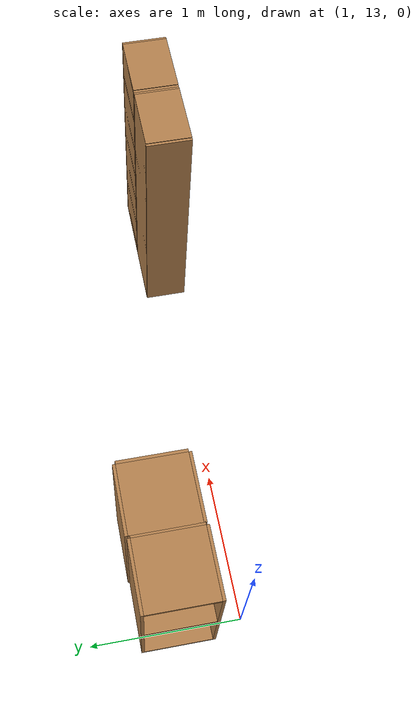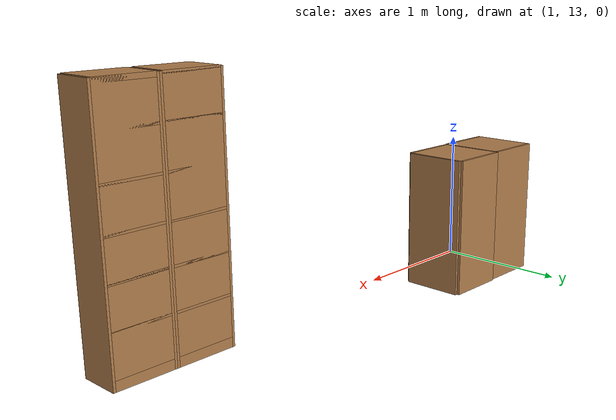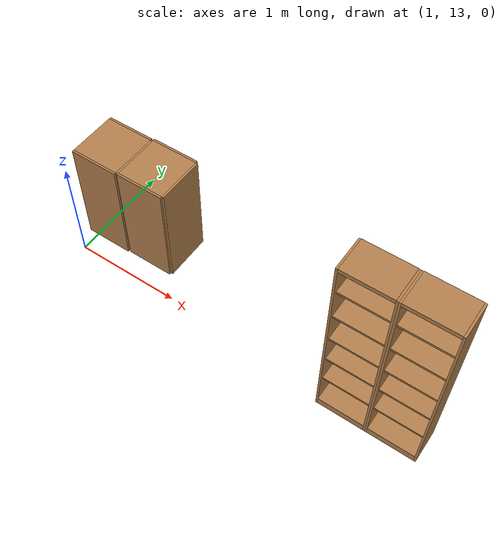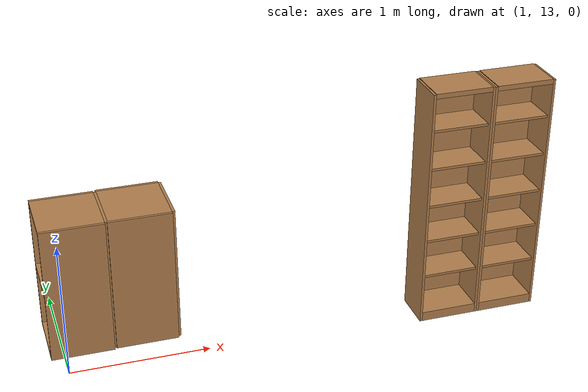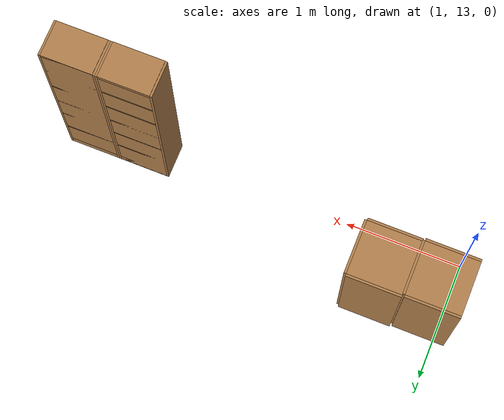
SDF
<sdf version="1.6">
 <world name="default">
  <model name="high_shelf02">
   <link name="link">
    <inertial>
     <mass>5</mass>
     <inertia><ixx>1</ixx><ixy>0</ixy><ixz>0</ixz><iyy>1</iyy><iyz>0</iyz><izz>1</izz></inertia>
    </inertial>
    <visual name="left_board">
     <pose>-0.1475 0.009 0.898 0 -0 0</pose>
     <geometry><box><size>0.295 0.018 1.796</size></box></geometry>
     <material>
      <script>
       <uri>model://base_materials/wood/scripts</uri>
       <uri>model://base_materials/wood/textures</uri>
       <name>base_materials/light_wood</name>
      </script>
     </material>
    </visual>
    <collision name="collision_left_board">
     <pose>-0.1475 0.009 0.898 0 -0 0</pose>
     <geometry><box><size>0.295 0.018 1.796</size></box></geometry>
    </collision>
    <visual name="right_board">
     <pose>-0.1475 0.441 0.898 0 -0 0</pose>
     <geometry><box><size>0.295 0.018 1.796</size></box></geometry>
     <material>
      <script>
       <uri>model://base_materials/wood/scripts</uri>
       <uri>model://base_materials/wood/textures</uri>
       <name>base_materials/light_wood</name>
      </script>
     </material>
    </visual>
    <collision name="collision_right_board">
     <pose>-0.1475 0.441 0.898 0 -0 0</pose>
     <geometry><box><size>0.295 0.018 1.796</size></box></geometry>
    </collision>
    <visual name="top_board">
     <pose>-0.1475 0.225 1.7825 0 -0 0</pose>
     <geometry><box><size>0.295 0.414 0.035</size></box></geometry>
     <material>
      <script>
       <uri>model://base_materials/wood/scripts</uri>
       <uri>model://base_materials/wood/textures</uri>
       <name>base_materials/light_wood</name>
      </script>
     </material>
    </visual>
    <collision name="collision_top_board">
     <pose>-0.1475 0.225 1.7825 0 -0 0</pose>
     <geometry><box><size>0.295 0.414 0.035</size></box></geometry>
    </collision>
    <visual name="1st_shelf">
     <pose>-0.162 0.225 1.51 0 -0 0</pose>
     <geometry><box><size>0.266 0.414 0.018</size></box></geometry>
     <material>
      <script>
       <uri>model://base_materials/wood/scripts</uri>
       <uri>model://base_materials/wood/textures</uri>
       <name>base_materials/light_wood</name>
      </script>
     </material>
    </visual>
    <collision name="collision_1st_shelf">
     <pose>-0.162 0.225 1.51 0 -0 0</pose>
     <geometry><box><size>0.266 0.414 0.018</size></box></geometry>
    </collision>
    <visual name="2nd_shelf">
     <pose>-0.162 0.225 1.22 0 -0 0</pose>
     <geometry><box><size>0.266 0.414 0.018</size></box></geometry>
     <material>
      <script>
       <uri>model://base_materials/wood/scripts</uri>
       <uri>model://base_materials/wood/textures</uri>
       <name>base_materials/light_wood</name>
      </script>
     </material>
    </visual>
    <collision name="collision_2nd_shelf">
     <pose>-0.162 0.225 1.22 0 -0 0</pose>
     <geometry><box><size>0.266 0.414 0.018</size></box></geometry>
    </collision>
    <visual name="3rd_shelf">
     <pose>-0.162 0.225 0.93 0 -0 0</pose>
     <geometry><box><size>0.266 0.414 0.018</size></box></geometry>
     <material>
      <script>
       <uri>model://base_materials/wood/scripts</uri>
       <uri>model://base_materials/wood/textures</uri>
       <name>base_materials/light_wood</name>
      </script>
     </material>
    </visual>
    <collision name="collision_3rd_shelf">
     <pose>-0.162 0.225 0.93 0 -0 0</pose>
     <geometry><box><size>0.266 0.414 0.018</size></box></geometry>
    </collision>
    <visual name="4th_shelf">
     <pose>-0.162 0.225 0.65 0 -0 0</pose>
     <geometry><box><size>0.266 0.414 0.018</size></box></geometry>
     <material>
      <script>
       <uri>model://base_materials/wood/scripts</uri>
       <uri>model://base_materials/wood/textures</uri>
       <name>base_materials/light_wood</name>
      </script>
     </material>
    </visual>
    <collision name="collision_4th_shelf">
     <pose>-0.162 0.225 0.65 0 -0 0</pose>
     <geometry><box><size>0.266 0.414 0.018</size></box></geometry>
    </collision>
    <visual name="5th_shelf">
     <pose>-0.162 0.225 0.36 0 -0 0</pose>
     <geometry><box><size>0.266 0.414 0.018</size></box></geometry>
     <material>
      <script>
       <uri>model://base_materials/wood/scripts</uri>
       <uri>model://base_materials/wood/textures</uri>
       <name>base_materials/light_wood</name>
      </script>
     </material>
    </visual>
    <collision name="collision_5th_shelf">
     <pose>-0.162 0.225 0.36 0 -0 0</pose>
     <geometry><box><size>0.266 0.414 0.018</size></box></geometry>
    </collision>
    <visual name="bottom_board">
     <pose>-0.1475 0.225 0.035 0 -0 0</pose>
     <geometry><box><size>0.295 0.414 0.07</size></box></geometry>
     <material>
      <script>
       <uri>model://base_materials/wood/scripts</uri>
       <uri>model://base_materials/wood/textures</uri>
       <name>base_materials/light_wood</name>
      </script>
     </material>
    </visual>
    <collision name="collision_bottom_board">
     <pose>-0.1475 0.225 0.035 0 -0 0</pose>
     <geometry><box><size>0.295 0.414 0.07</size></box></geometry>
    </collision>
    <visual name="back_board">
     <pose>-0.286 0.225 0.898 0 -0 0</pose>
     <geometry><box><size>0.018 0.414 1.796</size></box></geometry>
     <material>
      <script>
       <uri>model://base_materials/wood/scripts</uri>
       <uri>model://base_materials/wood/textures</uri>
       <name>base_materials/light_wood</name>
      </script>
     </material>
    </visual>
    <collision name="collision_back_board">
     <pose>-0.286 0.225 0.898 0 -0 0</pose>
     <geometry><box><size>0.018 0.414 1.796</size></box></geometry>
    </collision>
    <velocity_decay><linear>0</linear><angular>0</angular></velocity_decay>
   </link>
   <static>1</static>
   <pose>4 12.87 0 0 0 -1.5708</pose>
  </model>
  <model name="high_shelf03">
   <link name="link">
    <inertial>
     <mass>5</mass>
     <inertia><ixx>1</ixx><ixy>0</ixy><ixz>0</ixz><iyy>1</iyy><iyz>0</iyz><izz>1</izz></inertia>
    </inertial>
    <visual name="left_board">
     <pose>-0.1475 0.009 0.898 0 -0 0</pose>
     <geometry><box><size>0.295 0.018 1.796</size></box></geometry>
     <material>
      <script>
       <uri>model://base_materials/wood/scripts</uri>
       <uri>model://base_materials/wood/textures</uri>
       <name>base_materials/light_wood</name>
      </script>
     </material>
    </visual>
    <collision name="collision_left_board">
     <pose>-0.1475 0.009 0.898 0 -0 0</pose>
     <geometry><box><size>0.295 0.018 1.796</size></box></geometry>
    </collision>
    <visual name="right_board">
     <pose>-0.1475 0.441 0.898 0 -0 0</pose>
     <geometry><box><size>0.295 0.018 1.796</size></box></geometry>
     <material>
      <script>
       <uri>model://base_materials/wood/scripts</uri>
       <uri>model://base_materials/wood/textures</uri>
       <name>base_materials/light_wood</name>
      </script>
     </material>
    </visual>
    <collision name="collision_right_board">
     <pose>-0.1475 0.441 0.898 0 -0 0</pose>
     <geometry><box><size>0.295 0.018 1.796</size></box></geometry>
    </collision>
    <visual name="top_board">
     <pose>-0.1475 0.225 1.7825 0 -0 0</pose>
     <geometry><box><size>0.295 0.414 0.035</size></box></geometry>
     <material>
      <script>
       <uri>model://base_materials/wood/scripts</uri>
       <uri>model://base_materials/wood/textures</uri>
       <name>base_materials/light_wood</name>
      </script>
     </material>
    </visual>
    <collision name="collision_top_board">
     <pose>-0.1475 0.225 1.7825 0 -0 0</pose>
     <geometry><box><size>0.295 0.414 0.035</size></box></geometry>
    </collision>
    <visual name="1st_shelf">
     <pose>-0.162 0.225 1.51 0 -0 0</pose>
     <geometry><box><size>0.266 0.414 0.018</size></box></geometry>
     <material>
      <script>
       <uri>model://base_materials/wood/scripts</uri>
       <uri>model://base_materials/wood/textures</uri>
       <name>base_materials/light_wood</name>
      </script>
     </material>
    </visual>
    <collision name="collision_1st_shelf">
     <pose>-0.162 0.225 1.51 0 -0 0</pose>
     <geometry><box><size>0.266 0.414 0.018</size></box></geometry>
    </collision>
    <visual name="2nd_shelf">
     <pose>-0.162 0.225 1.22 0 -0 0</pose>
     <geometry><box><size>0.266 0.414 0.018</size></box></geometry>
     <material>
      <script>
       <uri>model://base_materials/wood/scripts</uri>
       <uri>model://base_materials/wood/textures</uri>
       <name>base_materials/light_wood</name>
      </script>
     </material>
    </visual>
    <collision name="collision_2nd_shelf">
     <pose>-0.162 0.225 1.22 0 -0 0</pose>
     <geometry><box><size>0.266 0.414 0.018</size></box></geometry>
    </collision>
    <visual name="3rd_shelf">
     <pose>-0.162 0.225 0.93 0 -0 0</pose>
     <geometry><box><size>0.266 0.414 0.018</size></box></geometry>
     <material>
      <script>
       <uri>model://base_materials/wood/scripts</uri>
       <uri>model://base_materials/wood/textures</uri>
       <name>base_materials/light_wood</name>
      </script>
     </material>
    </visual>
    <collision name="collision_3rd_shelf">
     <pose>-0.162 0.225 0.93 0 -0 0</pose>
     <geometry><box><size>0.266 0.414 0.018</size></box></geometry>
    </collision>
    <visual name="4th_shelf">
     <pose>-0.162 0.225 0.65 0 -0 0</pose>
     <geometry><box><size>0.266 0.414 0.018</size></box></geometry>
     <material>
      <script>
       <uri>model://base_materials/wood/scripts</uri>
       <uri>model://base_materials/wood/textures</uri>
       <name>base_materials/light_wood</name>
      </script>
     </material>
    </visual>
    <collision name="collision_4th_shelf">
     <pose>-0.162 0.225 0.65 0 -0 0</pose>
     <geometry><box><size>0.266 0.414 0.018</size></box></geometry>
    </collision>
    <visual name="5th_shelf">
     <pose>-0.162 0.225 0.36 0 -0 0</pose>
     <geometry><box><size>0.266 0.414 0.018</size></box></geometry>
     <material>
      <script>
       <uri>model://base_materials/wood/scripts</uri>
       <uri>model://base_materials/wood/textures</uri>
       <name>base_materials/light_wood</name>
      </script>
     </material>
    </visual>
    <collision name="collision_5th_shelf">
     <pose>-0.162 0.225 0.36 0 -0 0</pose>
     <geometry><box><size>0.266 0.414 0.018</size></box></geometry>
    </collision>
    <visual name="bottom_board">
     <pose>-0.1475 0.225 0.035 0 -0 0</pose>
     <geometry><box><size>0.295 0.414 0.07</size></box></geometry>
     <material>
      <script>
       <uri>model://base_materials/wood/scripts</uri>
       <uri>model://base_materials/wood/textures</uri>
       <name>base_materials/light_wood</name>
      </script>
     </material>
    </visual>
    <collision name="collision_bottom_board">
     <pose>-0.1475 0.225 0.035 0 -0 0</pose>
     <geometry><box><size>0.295 0.414 0.07</size></box></geometry>
    </collision>
    <visual name="back_board">
     <pose>-0.286 0.225 0.898 0 -0 0</pose>
     <geometry><box><size>0.018 0.414 1.796</size></box></geometry>
     <material>
      <script>
       <uri>model://base_materials/wood/scripts</uri>
       <uri>model://base_materials/wood/textures</uri>
       <name>base_materials/light_wood</name>
      </script>
     </material>
    </visual>
    <collision name="collision_back_board">
     <pose>-0.286 0.225 0.898 0 -0 0</pose>
     <geometry><box><size>0.018 0.414 1.796</size></box></geometry>
    </collision>
    <velocity_decay><linear>0</linear><angular>0</angular></velocity_decay>
   </link>
   <static>1</static>
   <pose>3.55 12.87 0 0 0 -1.5708</pose>
  </model>
  <model name="cabinet">
   <static>1</static>
   <link name="cabinet_bottom_plate">
    <inertial>
     <pose>0 0 -1 0 -0 0</pose>
     <inertia><ixx>2.05</ixx><ixy>0</ixy><ixz>0</ixz><iyy>2.05</iyy><iyz>0</iyz><izz>2.05</izz></inertia>
     <mass>25</mass>
    </inertial>
    <collision name="cabinet_bottom_plate_geom">
     <pose>0 0 0.01 0 -0 0</pose>
     <geometry><box><size>0.45 0.45 0.02</size></box></geometry>
    </collision>
    <visual name="cabinet_bottom_plate_geom_visual">
     <pose>0 0 0.01 0 -0 0</pose>
     <geometry><box><size>0.45 0.45 0.02</size></box></geometry>
     <material>
      <script><uri>file://media/materials/scripts/gazebo.material</uri><name>Gazebo/Wood</name></script>
     </material>
    </visual>
    <collision name="cabinet_bottom_plate_geom_cabinet_back_plate">
     <pose>0.235 0 0.51 0 -0 0</pose>
     <geometry><box><size>0.02 0.45 1.02</size></box></geometry>
    </collision>
    <visual name="cabinet_bottom_plate_geom_cabinet_back_plate_visual">
     <pose>0.235 0 0.51 0 -0 0</pose>
     <geometry><box><size>0.02 0.45 1.02</size></box></geometry>
     <material>
      <script><uri>file://media/materials/scripts/gazebo.material</uri><name>Gazebo/Wood</name></script>
     </material>
    </visual>
    <collision name="cabinet_bottom_plate_geom_cabinet_left_plate">
     <pose>0 0.235 0.51 0 -0 0</pose>
     <geometry><box><size>0.45 0.02 1.02</size></box></geometry>
    </collision>
    <visual name="cabinet_bottom_plate_geom_cabinet_left_plate_visual">
     <pose>0 0.235 0.51 0 -0 0</pose>
     <geometry><box><size>0.45 0.02 1.02</size></box></geometry>
     <material>
      <script><uri>file://media/materials/scripts/gazebo.material</uri><name>Gazebo/Wood</name></script>
     </material>
    </visual>
    <collision name="cabinet_bottom_plate_geom_cabinet_middle_plate">
     <pose>0 0 0.51 0 -0 0</pose>
     <geometry><box><size>0.45 0.45 0.02</size></box></geometry>
    </collision>
    <visual name="cabinet_bottom_plate_geom_cabinet_middle_plate_visual">
     <pose>0 0 0.51 0 -0 0</pose>
     <geometry><box><size>0.45 0.45 0.02</size></box></geometry>
     <material>
      <script><uri>file://media/materials/scripts/gazebo.material</uri><name>Gazebo/Wood</name></script>
     </material>
    </visual>
    <collision name="cabinet_bottom_plate_geom_cabinet_right_plate">
     <pose>0 -0.235 0.51 0 -0 0</pose>
     <geometry><box><size>0.45 0.02 1.02</size></box></geometry>
    </collision>
    <visual name="cabinet_bottom_plate_geom_cabinet_right_plate_visual">
     <pose>0 -0.235 0.51 0 -0 0</pose>
     <geometry><box><size>0.45 0.02 1.02</size></box></geometry>
     <material>
      <script><uri>file://media/materials/scripts/gazebo.material</uri><name>Gazebo/Wood</name></script>
     </material>
    </visual>
    <collision name="cabinet_bottom_plate_geom_cabinet_top_plate">
     <pose>0 0 1.01 0 -0 0</pose>
     <geometry><box><size>0.45 0.45 0.02</size></box></geometry>
    </collision>
    <visual name="cabinet_bottom_plate_geom_cabinet_top_plate_visual">
     <pose>0 0 1.01 0 -0 0</pose>
     <geometry><box><size>0.45 0.45 0.02</size></box></geometry>
     <material>
      <script><uri>file://media/materials/scripts/gazebo.material</uri><name>Gazebo/Wood</name></script>
     </material>
    </visual>
   </link>
   <pose>1.1302 13.4323 0 0 -0 0</pose>
  </model>
  <model name="cabinet_0">
   <static>1</static>
   <link name="cabinet_bottom_plate">
    <inertial>
     <pose>0 0 -1 0 -0 0</pose>
     <inertia><ixx>2.05</ixx><ixy>0</ixy><ixz>0</ixz><iyy>2.05</iyy><iyz>0</iyz><izz>2.05</izz></inertia>
     <mass>25</mass>
    </inertial>
    <collision name="cabinet_bottom_plate_geom">
     <pose>0 0 0.01 0 -0 0</pose>
     <geometry><box><size>0.45 0.45 0.02</size></box></geometry>
    </collision>
    <visual name="cabinet_bottom_plate_geom_visual">
     <pose>0 0 0.01 0 -0 0</pose>
     <geometry><box><size>0.45 0.45 0.02</size></box></geometry>
     <material>
      <script><uri>file://media/materials/scripts/gazebo.material</uri><name>Gazebo/Wood</name></script>
     </material>
    </visual>
    <collision name="cabinet_bottom_plate_geom_cabinet_back_plate">
     <pose>0.235 0 0.51 0 -0 0</pose>
     <geometry><box><size>0.02 0.45 1.02</size></box></geometry>
    </collision>
    <visual name="cabinet_bottom_plate_geom_cabinet_back_plate_visual">
     <pose>0.235 0 0.51 0 -0 0</pose>
     <geometry><box><size>0.02 0.45 1.02</size></box></geometry>
     <material>
      <script><uri>file://media/materials/scripts/gazebo.material</uri><name>Gazebo/Wood</name></script>
     </material>
    </visual>
    <collision name="cabinet_bottom_plate_geom_cabinet_left_plate">
     <pose>0 0.235 0.51 0 -0 0</pose>
     <geometry><box><size>0.45 0.02 1.02</size></box></geometry>
    </collision>
    <visual name="cabinet_bottom_plate_geom_cabinet_left_plate_visual">
     <pose>0 0.235 0.51 0 -0 0</pose>
     <geometry><box><size>0.45 0.02 1.02</size></box></geometry>
     <material>
      <script><uri>file://media/materials/scripts/gazebo.material</uri><name>Gazebo/Wood</name></script>
     </material>
    </visual>
    <collision name="cabinet_bottom_plate_geom_cabinet_middle_plate">
     <pose>0 0 0.51 0 -0 0</pose>
     <geometry><box><size>0.45 0.45 0.02</size></box></geometry>
    </collision>
    <visual name="cabinet_bottom_plate_geom_cabinet_middle_plate_visual">
     <pose>0 0 0.51 0 -0 0</pose>
     <geometry><box><size>0.45 0.45 0.02</size></box></geometry>
     <material>
      <script><uri>file://media/materials/scripts/gazebo.material</uri><name>Gazebo/Wood</name></script>
     </material>
    </visual>
    <collision name="cabinet_bottom_plate_geom_cabinet_right_plate">
     <pose>0 -0.235 0.51 0 -0 0</pose>
     <geometry><box><size>0.45 0.02 1.02</size></box></geometry>
    </collision>
    <visual name="cabinet_bottom_plate_geom_cabinet_right_plate_visual">
     <pose>0 -0.235 0.51 0 -0 0</pose>
     <geometry><box><size>0.45 0.02 1.02</size></box></geometry>
     <material>
      <script><uri>file://media/materials/scripts/gazebo.material</uri><name>Gazebo/Wood</name></script>
     </material>
    </visual>
    <collision name="cabinet_bottom_plate_geom_cabinet_top_plate">
     <pose>0 0 1.01 0 -0 0</pose>
     <geometry><box><size>0.45 0.45 0.02</size></box></geometry>
    </collision>
    <visual name="cabinet_bottom_plate_geom_cabinet_top_plate_visual">
     <pose>0 0 1.01 0 -0 0</pose>
     <geometry><box><size>0.45 0.45 0.02</size></box></geometry>
     <material>
      <script><uri>file://media/materials/scripts/gazebo.material</uri><name>Gazebo/Wood</name></script>
     </material>
    </visual>
   </link>
   <pose>1.59488 13.4428 0 0 -0 0</pose>
  </model>
 </world>
</sdf>
